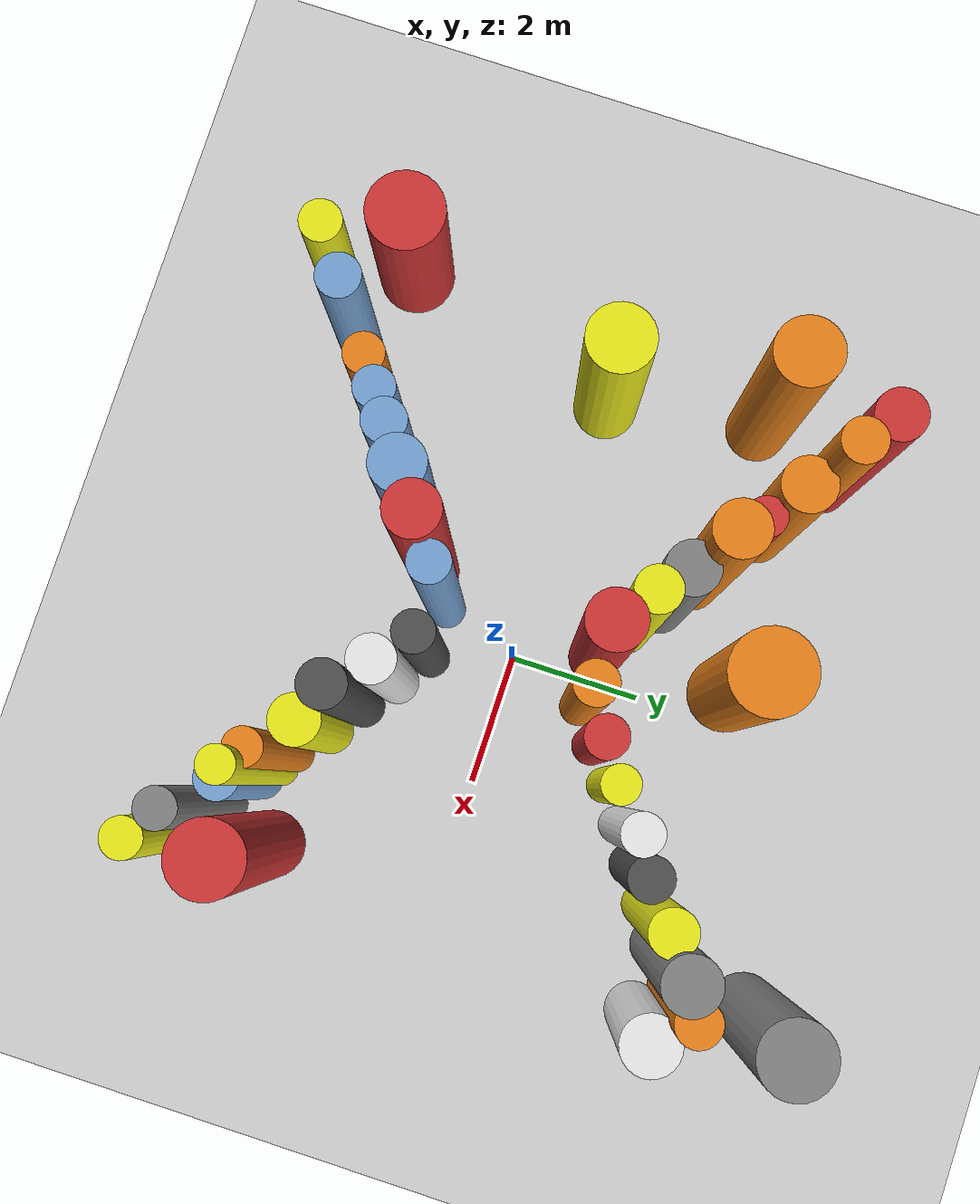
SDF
<?xml version='1.0'?>
<sdf version='1.6'>
  <world name='routeA_rl_v1__dense_recovery__rl_train__bottleneck_corridor__000063'>
    <!-- Sun light -->
    <light name='sun' type='directional'>
      <cast_shadows>1</cast_shadows>
      <pose>0 0 10 0 0 0</pose>
      <diffuse>0.8 0.8 0.8 1</diffuse>
      <specular>0.2 0.2 0.2 1</specular>
      <attenuation>
        <range>1000</range>
        <constant>0.9</constant>
        <linear>0.01</linear>
        <quadratic>0.001</quadratic>
      </attenuation>
      <direction>-0.5 0.1 -0.9</direction>
    </light>

    <!-- Ground plane -->
    <model name='ground_plane'>
      <static>1</static>
      <link name='link'>
        <collision name='collision'>
          <geometry>
            <plane>
              <normal>0 0 1</normal>
              <size>100 100</size>
            </plane>
          </geometry>
          <surface>
            <contact>
              <collide_bitmask>65535</collide_bitmask>
              <ode/>
            </contact>
            <friction>
              <ode>
                <mu>100</mu>
                <mu2>50</mu2>
              </ode>
              <torsional><ode/></torsional>
            </friction>
            <bounce/>
          </surface>
          <max_contacts>10</max_contacts>
        </collision>
        <visual name='visual'>
          <cast_shadows>0</cast_shadows>
          <geometry>
            <plane>
              <normal>0 0 1</normal>
              <size>100 100</size>
            </plane>
          </geometry>
          <material>
            <script>
              <uri>file://media/materials/scripts/gazebo.material</uri>
              <n>Gazebo/Grey</n>
            </script>
          </material>
        </visual>
      </link>
    </model>

    <!-- Environment -->
    <magnetic_field>6e-06 2.3e-05 -4.2e-05</magnetic_field>
    <atmosphere type='adiabatic'/>
    <physics name='default_physics' default='0' type='ode'>
      <gravity>0 0 -9.8</gravity>
      <max_step_size>0.004</max_step_size>
      <real_time_factor>1</real_time_factor>
      <real_time_update_rate>250</real_time_update_rate>
    </physics>
    <scene>
      <ambient>0.4 0.4 0.4 1</ambient>
      <background>0.7 0.7 0.7 1</background>
      <shadows>1</shadows>
    </scene>
    <wind/>
    <spherical_coordinates>
      <surface_model>EARTH_WGS84</surface_model>
      <latitude_deg>0</latitude_deg>
      <longitude_deg>0</longitude_deg>
      <elevation>0</elevation>
      <heading_deg>0</heading_deg>
    </spherical_coordinates>

    <!-- ============ OBSTACLES (40) ============ -->
    <model name='funnel_l_0'>
      <static>1</static>
      <link name='link'>
        <visual name='visual'>
          <geometry>
            <cylinder>
              <radius>0.2784</radius>
              <length>5.7623</length>
            </cylinder>
          </geometry>
          <material>
            <script>
              <n>Gazebo/Yellow</n>
              <uri>file://media/materials/scripts/gazebo.material</uri>
            </script>
            <ambient>0.9 0.9 0.1 1</ambient>
          </material>
        </visual>
        <collision name='collision'>
          <geometry>
            <cylinder>
              <radius>0.2784</radius>
              <length>5.7623</length>
            </cylinder>
          </geometry>
          <max_contacts>10</max_contacts>
          <surface>
            <contact><ode/></contact>
            <bounce/>
            <friction>
              <ode><mu>1</mu><mu2>1</mu2></ode>
              <torsional><ode/></torsional>
            </friction>
          </surface>
        </collision>
      </link>
      <pose>-4.0000 -3.8000 2.8812 0 0 0.0000</pose>
    </model>

    <model name='funnel_r_0'>
      <static>1</static>
      <link name='link'>
        <visual name='visual'>
          <geometry>
            <cylinder>
              <radius>0.3499</radius>
              <length>5.4058</length>
            </cylinder>
          </geometry>
          <material>
            <script>
              <n>Gazebo/Red</n>
              <uri>file://media/materials/scripts/gazebo.material</uri>
            </script>
            <ambient>0.8 0.2 0.2 1</ambient>
          </material>
        </visual>
        <collision name='collision'>
          <geometry>
            <cylinder>
              <radius>0.3499</radius>
              <length>5.4058</length>
            </cylinder>
          </geometry>
          <max_contacts>10</max_contacts>
          <surface>
            <contact><ode/></contact>
            <bounce/>
            <friction>
              <ode><mu>1</mu><mu2>1</mu2></ode>
              <torsional><ode/></torsional>
            </friction>
          </surface>
        </collision>
      </link>
      <pose>-4.0000 3.8000 2.7029 0 0 0.0000</pose>
    </model>

    <model name='funnel_l_1'>
      <static>1</static>
      <link name='link'>
        <visual name='visual'>
          <geometry>
            <cylinder>
              <radius>0.3016</radius>
              <length>5.4706</length>
            </cylinder>
          </geometry>
          <material>
            <script>
              <n>Gazebo/Blue</n>
              <uri>file://media/materials/scripts/gazebo.material</uri>
            </script>
            <ambient>0.447 0.624 0.812 1</ambient>
          </material>
        </visual>
        <collision name='collision'>
          <geometry>
            <cylinder>
              <radius>0.3016</radius>
              <length>5.4706</length>
            </cylinder>
          </geometry>
          <max_contacts>10</max_contacts>
          <surface>
            <contact><ode/></contact>
            <bounce/>
            <friction>
              <ode><mu>1</mu><mu2>1</mu2></ode>
              <torsional><ode/></torsional>
            </friction>
          </surface>
        </collision>
      </link>
      <pose>-3.4857 -3.4286 2.7353 0 0 0.0000</pose>
    </model>

    <model name='funnel_r_1'>
      <static>1</static>
      <link name='link'>
        <visual name='visual'>
          <geometry>
            <cylinder>
              <radius>0.3065</radius>
              <length>5.6435</length>
            </cylinder>
          </geometry>
          <material>
            <script>
              <n>Gazebo/Orange</n>
              <uri>file://media/materials/scripts/gazebo.material</uri>
            </script>
            <ambient>0.9 0.5 0.1 1</ambient>
          </material>
        </visual>
        <collision name='collision'>
          <geometry>
            <cylinder>
              <radius>0.3065</radius>
              <length>5.6435</length>
            </cylinder>
          </geometry>
          <max_contacts>10</max_contacts>
          <surface>
            <contact><ode/></contact>
            <bounce/>
            <friction>
              <ode><mu>1</mu><mu2>1</mu2></ode>
              <torsional><ode/></torsional>
            </friction>
          </surface>
        </collision>
      </link>
      <pose>-3.4857 3.4286 2.8217 0 0 0.0000</pose>
    </model>

    <model name='funnel_l_2'>
      <static>1</static>
      <link name='link'>
        <visual name='visual'>
          <geometry>
            <cylinder>
              <radius>0.2942</radius>
              <length>4.0134</length>
            </cylinder>
          </geometry>
          <material>
            <script>
              <n>Gazebo/Orange</n>
              <uri>file://media/materials/scripts/gazebo.material</uri>
            </script>
            <ambient>0.9 0.5 0.1 1</ambient>
          </material>
        </visual>
        <collision name='collision'>
          <geometry>
            <cylinder>
              <radius>0.2942</radius>
              <length>4.0134</length>
            </cylinder>
          </geometry>
          <max_contacts>10</max_contacts>
          <surface>
            <contact><ode/></contact>
            <bounce/>
            <friction>
              <ode><mu>1</mu><mu2>1</mu2></ode>
              <torsional><ode/></torsional>
            </friction>
          </surface>
        </collision>
      </link>
      <pose>-2.9714 -3.0571 2.0067 0 0 0.0000</pose>
    </model>

    <model name='funnel_r_2'>
      <static>1</static>
      <link name='link'>
        <visual name='visual'>
          <geometry>
            <cylinder>
              <radius>0.3831</radius>
              <length>4.6756</length>
            </cylinder>
          </geometry>
          <material>
            <script>
              <n>Gazebo/Orange</n>
              <uri>file://media/materials/scripts/gazebo.material</uri>
            </script>
            <ambient>0.9 0.5 0.1 1</ambient>
          </material>
        </visual>
        <collision name='collision'>
          <geometry>
            <cylinder>
              <radius>0.3831</radius>
              <length>4.6756</length>
            </cylinder>
          </geometry>
          <max_contacts>10</max_contacts>
          <surface>
            <contact><ode/></contact>
            <bounce/>
            <friction>
              <ode><mu>1</mu><mu2>1</mu2></ode>
              <torsional><ode/></torsional>
            </friction>
          </surface>
        </collision>
      </link>
      <pose>-2.9714 3.0571 2.3378 0 0 0.0000</pose>
    </model>

    <model name='funnel_l_3'>
      <static>1</static>
      <link name='link'>
        <visual name='visual'>
          <geometry>
            <cylinder>
              <radius>0.2924</radius>
              <length>4.6048</length>
            </cylinder>
          </geometry>
          <material>
            <script>
              <n>Gazebo/Blue</n>
              <uri>file://media/materials/scripts/gazebo.material</uri>
            </script>
            <ambient>0.447 0.624 0.812 1</ambient>
          </material>
        </visual>
        <collision name='collision'>
          <geometry>
            <cylinder>
              <radius>0.2924</radius>
              <length>4.6048</length>
            </cylinder>
          </geometry>
          <max_contacts>10</max_contacts>
          <surface>
            <contact><ode/></contact>
            <bounce/>
            <friction>
              <ode><mu>1</mu><mu2>1</mu2></ode>
              <torsional><ode/></torsional>
            </friction>
          </surface>
        </collision>
      </link>
      <pose>-2.4571 -2.6857 2.3024 0 0 0.0000</pose>
    </model>

    <model name='funnel_r_3'>
      <static>1</static>
      <link name='link'>
        <visual name='visual'>
          <geometry>
            <cylinder>
              <radius>0.2808</radius>
              <length>4.3903</length>
            </cylinder>
          </geometry>
          <material>
            <script>
              <n>Gazebo/Red</n>
              <uri>file://media/materials/scripts/gazebo.material</uri>
            </script>
            <ambient>0.8 0.2 0.2 1</ambient>
          </material>
        </visual>
        <collision name='collision'>
          <geometry>
            <cylinder>
              <radius>0.2808</radius>
              <length>4.3903</length>
            </cylinder>
          </geometry>
          <max_contacts>10</max_contacts>
          <surface>
            <contact><ode/></contact>
            <bounce/>
            <friction>
              <ode><mu>1</mu><mu2>1</mu2></ode>
              <torsional><ode/></torsional>
            </friction>
          </surface>
        </collision>
      </link>
      <pose>-2.4571 2.6857 2.1952 0 0 0.0000</pose>
    </model>

    <model name='funnel_l_4'>
      <static>1</static>
      <link name='link'>
        <visual name='visual'>
          <geometry>
            <cylinder>
              <radius>0.3021</radius>
              <length>5.3583</length>
            </cylinder>
          </geometry>
          <material>
            <script>
              <n>Gazebo/Blue</n>
              <uri>file://media/materials/scripts/gazebo.material</uri>
            </script>
            <ambient>0.447 0.624 0.812 1</ambient>
          </material>
        </visual>
        <collision name='collision'>
          <geometry>
            <cylinder>
              <radius>0.3021</radius>
              <length>5.3583</length>
            </cylinder>
          </geometry>
          <max_contacts>10</max_contacts>
          <surface>
            <contact><ode/></contact>
            <bounce/>
            <friction>
              <ode><mu>1</mu><mu2>1</mu2></ode>
              <torsional><ode/></torsional>
            </friction>
          </surface>
        </collision>
      </link>
      <pose>-1.9429 -2.3143 2.6791 0 0 0.0000</pose>
    </model>

    <model name='funnel_r_4'>
      <static>1</static>
      <link name='link'>
        <visual name='visual'>
          <geometry>
            <cylinder>
              <radius>0.3800</radius>
              <length>5.7894</length>
            </cylinder>
          </geometry>
          <material>
            <script>
              <n>Gazebo/Orange</n>
              <uri>file://media/materials/scripts/gazebo.material</uri>
            </script>
            <ambient>0.9 0.5 0.1 1</ambient>
          </material>
        </visual>
        <collision name='collision'>
          <geometry>
            <cylinder>
              <radius>0.3800</radius>
              <length>5.7894</length>
            </cylinder>
          </geometry>
          <max_contacts>10</max_contacts>
          <surface>
            <contact><ode/></contact>
            <bounce/>
            <friction>
              <ode><mu>1</mu><mu2>1</mu2></ode>
              <torsional><ode/></torsional>
            </friction>
          </surface>
        </collision>
      </link>
      <pose>-1.9429 2.3143 2.8947 0 0 0.0000</pose>
    </model>

    <model name='funnel_l_5'>
      <static>1</static>
      <link name='link'>
        <visual name='visual'>
          <geometry>
            <cylinder>
              <radius>0.3782</radius>
              <length>5.6881</length>
            </cylinder>
          </geometry>
          <material>
            <script>
              <n>Gazebo/Blue</n>
              <uri>file://media/materials/scripts/gazebo.material</uri>
            </script>
            <ambient>0.447 0.624 0.812 1</ambient>
          </material>
        </visual>
        <collision name='collision'>
          <geometry>
            <cylinder>
              <radius>0.3782</radius>
              <length>5.6881</length>
            </cylinder>
          </geometry>
          <max_contacts>10</max_contacts>
          <surface>
            <contact><ode/></contact>
            <bounce/>
            <friction>
              <ode><mu>1</mu><mu2>1</mu2></ode>
              <torsional><ode/></torsional>
            </friction>
          </surface>
        </collision>
      </link>
      <pose>-1.4286 -1.9429 2.8440 0 0 0.0000</pose>
    </model>

    <model name='funnel_r_5'>
      <static>1</static>
      <link name='link'>
        <visual name='visual'>
          <geometry>
            <cylinder>
              <radius>0.3706</radius>
              <length>4.9721</length>
            </cylinder>
          </geometry>
          <material>
            <script>
              <n>Gazebo/Grey</n>
              <uri>file://media/materials/scripts/gazebo.material</uri>
            </script>
            <ambient>0.5 0.5 0.5 1</ambient>
          </material>
        </visual>
        <collision name='collision'>
          <geometry>
            <cylinder>
              <radius>0.3706</radius>
              <length>4.9721</length>
            </cylinder>
          </geometry>
          <max_contacts>10</max_contacts>
          <surface>
            <contact><ode/></contact>
            <bounce/>
            <friction>
              <ode><mu>1</mu><mu2>1</mu2></ode>
              <torsional><ode/></torsional>
            </friction>
          </surface>
        </collision>
      </link>
      <pose>-1.4286 1.9429 2.4861 0 0 0.0000</pose>
    </model>

    <model name='funnel_l_6'>
      <static>1</static>
      <link name='link'>
        <visual name='visual'>
          <geometry>
            <cylinder>
              <radius>0.3805</radius>
              <length>5.8896</length>
            </cylinder>
          </geometry>
          <material>
            <script>
              <n>Gazebo/Red</n>
              <uri>file://media/materials/scripts/gazebo.material</uri>
            </script>
            <ambient>0.8 0.2 0.2 1</ambient>
          </material>
        </visual>
        <collision name='collision'>
          <geometry>
            <cylinder>
              <radius>0.3805</radius>
              <length>5.8896</length>
            </cylinder>
          </geometry>
          <max_contacts>10</max_contacts>
          <surface>
            <contact><ode/></contact>
            <bounce/>
            <friction>
              <ode><mu>1</mu><mu2>1</mu2></ode>
              <torsional><ode/></torsional>
            </friction>
          </surface>
        </collision>
      </link>
      <pose>-0.9143 -1.5714 2.9448 0 0 0.0000</pose>
    </model>

    <model name='funnel_r_6'>
      <static>1</static>
      <link name='link'>
        <visual name='visual'>
          <geometry>
            <cylinder>
              <radius>0.3105</radius>
              <length>5.8539</length>
            </cylinder>
          </geometry>
          <material>
            <script>
              <n>Gazebo/Yellow</n>
              <uri>file://media/materials/scripts/gazebo.material</uri>
            </script>
            <ambient>0.9 0.9 0.1 1</ambient>
          </material>
        </visual>
        <collision name='collision'>
          <geometry>
            <cylinder>
              <radius>0.3105</radius>
              <length>5.8539</length>
            </cylinder>
          </geometry>
          <max_contacts>10</max_contacts>
          <surface>
            <contact><ode/></contact>
            <bounce/>
            <friction>
              <ode><mu>1</mu><mu2>1</mu2></ode>
              <torsional><ode/></torsional>
            </friction>
          </surface>
        </collision>
      </link>
      <pose>-0.9143 1.5714 2.9270 0 0 0.0000</pose>
    </model>

    <model name='funnel_l_7'>
      <static>1</static>
      <link name='link'>
        <visual name='visual'>
          <geometry>
            <cylinder>
              <radius>0.2876</radius>
              <length>5.5774</length>
            </cylinder>
          </geometry>
          <material>
            <script>
              <n>Gazebo/Blue</n>
              <uri>file://media/materials/scripts/gazebo.material</uri>
            </script>
            <ambient>0.447 0.624 0.812 1</ambient>
          </material>
        </visual>
        <collision name='collision'>
          <geometry>
            <cylinder>
              <radius>0.2876</radius>
              <length>5.5774</length>
            </cylinder>
          </geometry>
          <max_contacts>10</max_contacts>
          <surface>
            <contact><ode/></contact>
            <bounce/>
            <friction>
              <ode><mu>1</mu><mu2>1</mu2></ode>
              <torsional><ode/></torsional>
            </friction>
          </surface>
        </collision>
      </link>
      <pose>-0.4000 -1.2000 2.7887 0 0 0.0000</pose>
    </model>

    <model name='funnel_r_7'>
      <static>1</static>
      <link name='link'>
        <visual name='visual'>
          <geometry>
            <cylinder>
              <radius>0.3985</radius>
              <length>5.8853</length>
            </cylinder>
          </geometry>
          <material>
            <script>
              <n>Gazebo/Red</n>
              <uri>file://media/materials/scripts/gazebo.material</uri>
            </script>
            <ambient>0.8 0.2 0.2 1</ambient>
          </material>
        </visual>
        <collision name='collision'>
          <geometry>
            <cylinder>
              <radius>0.3985</radius>
              <length>5.8853</length>
            </cylinder>
          </geometry>
          <max_contacts>10</max_contacts>
          <surface>
            <contact><ode/></contact>
            <bounce/>
            <friction>
              <ode><mu>1</mu><mu2>1</mu2></ode>
              <torsional><ode/></torsional>
            </friction>
          </surface>
        </collision>
      </link>
      <pose>-0.4000 1.2000 2.9427 0 0 0.0000</pose>
    </model>

    <model name='funnel_out_l_0'>
      <static>1</static>
      <link name='link'>
        <visual name='visual'>
          <geometry>
            <cylinder>
              <radius>0.2959</radius>
              <length>4.5158</length>
            </cylinder>
          </geometry>
          <material>
            <script>
              <n>Gazebo/DarkGrey</n>
              <uri>file://media/materials/scripts/gazebo.material</uri>
            </script>
            <ambient>0.3 0.3 0.3 1</ambient>
          </material>
        </visual>
        <collision name='collision'>
          <geometry>
            <cylinder>
              <radius>0.2959</radius>
              <length>4.5158</length>
            </cylinder>
          </geometry>
          <max_contacts>10</max_contacts>
          <surface>
            <contact><ode/></contact>
            <bounce/>
            <friction>
              <ode><mu>1</mu><mu2>1</mu2></ode>
              <torsional><ode/></torsional>
            </friction>
          </surface>
        </collision>
      </link>
      <pose>0.4000 -1.2000 2.2579 0 0 0.0000</pose>
    </model>

    <model name='funnel_out_r_0'>
      <static>1</static>
      <link name='link'>
        <visual name='visual'>
          <geometry>
            <cylinder>
              <radius>0.2940</radius>
              <length>5.9018</length>
            </cylinder>
          </geometry>
          <material>
            <script>
              <n>Gazebo/Orange</n>
              <uri>file://media/materials/scripts/gazebo.material</uri>
            </script>
            <ambient>0.9 0.5 0.1 1</ambient>
          </material>
        </visual>
        <collision name='collision'>
          <geometry>
            <cylinder>
              <radius>0.2940</radius>
              <length>5.9018</length>
            </cylinder>
          </geometry>
          <max_contacts>10</max_contacts>
          <surface>
            <contact><ode/></contact>
            <bounce/>
            <friction>
              <ode><mu>1</mu><mu2>1</mu2></ode>
              <torsional><ode/></torsional>
            </friction>
          </surface>
        </collision>
      </link>
      <pose>0.4000 1.2000 2.9509 0 0 0.0000</pose>
    </model>

    <model name='funnel_out_l_1'>
      <static>1</static>
      <link name='link'>
        <visual name='visual'>
          <geometry>
            <cylinder>
              <radius>0.3319</radius>
              <length>4.8275</length>
            </cylinder>
          </geometry>
          <material>
            <script>
              <n>Gazebo/White</n>
              <uri>file://media/materials/scripts/gazebo.material</uri>
            </script>
            <ambient>0.9 0.9 0.9 1</ambient>
          </material>
        </visual>
        <collision name='collision'>
          <geometry>
            <cylinder>
              <radius>0.3319</radius>
              <length>4.8275</length>
            </cylinder>
          </geometry>
          <max_contacts>10</max_contacts>
          <surface>
            <contact><ode/></contact>
            <bounce/>
            <friction>
              <ode><mu>1</mu><mu2>1</mu2></ode>
              <torsional><ode/></torsional>
            </friction>
          </surface>
        </collision>
      </link>
      <pose>0.9143 -1.5714 2.4137 0 0 0.0000</pose>
    </model>

    <model name='funnel_out_r_1'>
      <static>1</static>
      <link name='link'>
        <visual name='visual'>
          <geometry>
            <cylinder>
              <radius>0.3010</radius>
              <length>4.6216</length>
            </cylinder>
          </geometry>
          <material>
            <script>
              <n>Gazebo/Red</n>
              <uri>file://media/materials/scripts/gazebo.material</uri>
            </script>
            <ambient>0.8 0.2 0.2 1</ambient>
          </material>
        </visual>
        <collision name='collision'>
          <geometry>
            <cylinder>
              <radius>0.3010</radius>
              <length>4.6216</length>
            </cylinder>
          </geometry>
          <max_contacts>10</max_contacts>
          <surface>
            <contact><ode/></contact>
            <bounce/>
            <friction>
              <ode><mu>1</mu><mu2>1</mu2></ode>
              <torsional><ode/></torsional>
            </friction>
          </surface>
        </collision>
      </link>
      <pose>0.9143 1.5714 2.3108 0 0 0.0000</pose>
    </model>

    <model name='funnel_out_l_2'>
      <static>1</static>
      <link name='link'>
        <visual name='visual'>
          <geometry>
            <cylinder>
              <radius>0.3216</radius>
              <length>5.7468</length>
            </cylinder>
          </geometry>
          <material>
            <script>
              <n>Gazebo/DarkGrey</n>
              <uri>file://media/materials/scripts/gazebo.material</uri>
            </script>
            <ambient>0.3 0.3 0.3 1</ambient>
          </material>
        </visual>
        <collision name='collision'>
          <geometry>
            <cylinder>
              <radius>0.3216</radius>
              <length>5.7468</length>
            </cylinder>
          </geometry>
          <max_contacts>10</max_contacts>
          <surface>
            <contact><ode/></contact>
            <bounce/>
            <friction>
              <ode><mu>1</mu><mu2>1</mu2></ode>
              <torsional><ode/></torsional>
            </friction>
          </surface>
        </collision>
      </link>
      <pose>1.4286 -1.9429 2.8734 0 0 0.0000</pose>
    </model>

    <model name='funnel_out_r_2'>
      <static>1</static>
      <link name='link'>
        <visual name='visual'>
          <geometry>
            <cylinder>
              <radius>0.2726</radius>
              <length>4.2961</length>
            </cylinder>
          </geometry>
          <material>
            <script>
              <n>Gazebo/Yellow</n>
              <uri>file://media/materials/scripts/gazebo.material</uri>
            </script>
            <ambient>0.9 0.9 0.1 1</ambient>
          </material>
        </visual>
        <collision name='collision'>
          <geometry>
            <cylinder>
              <radius>0.2726</radius>
              <length>4.2961</length>
            </cylinder>
          </geometry>
          <max_contacts>10</max_contacts>
          <surface>
            <contact><ode/></contact>
            <bounce/>
            <friction>
              <ode><mu>1</mu><mu2>1</mu2></ode>
              <torsional><ode/></torsional>
            </friction>
          </surface>
        </collision>
      </link>
      <pose>1.4286 1.9429 2.1480 0 0 0.0000</pose>
    </model>

    <model name='funnel_out_l_3'>
      <static>1</static>
      <link name='link'>
        <visual name='visual'>
          <geometry>
            <cylinder>
              <radius>0.3551</radius>
              <length>4.3196</length>
            </cylinder>
          </geometry>
          <material>
            <script>
              <n>Gazebo/Yellow</n>
              <uri>file://media/materials/scripts/gazebo.material</uri>
            </script>
            <ambient>0.9 0.9 0.1 1</ambient>
          </material>
        </visual>
        <collision name='collision'>
          <geometry>
            <cylinder>
              <radius>0.3551</radius>
              <length>4.3196</length>
            </cylinder>
          </geometry>
          <max_contacts>10</max_contacts>
          <surface>
            <contact><ode/></contact>
            <bounce/>
            <friction>
              <ode><mu>1</mu><mu2>1</mu2></ode>
              <torsional><ode/></torsional>
            </friction>
          </surface>
        </collision>
      </link>
      <pose>1.9429 -2.3143 2.1598 0 0 0.0000</pose>
    </model>

    <model name='funnel_out_r_3'>
      <static>1</static>
      <link name='link'>
        <visual name='visual'>
          <geometry>
            <cylinder>
              <radius>0.2841</radius>
              <length>5.4385</length>
            </cylinder>
          </geometry>
          <material>
            <script>
              <n>Gazebo/White</n>
              <uri>file://media/materials/scripts/gazebo.material</uri>
            </script>
            <ambient>0.9 0.9 0.9 1</ambient>
          </material>
        </visual>
        <collision name='collision'>
          <geometry>
            <cylinder>
              <radius>0.2841</radius>
              <length>5.4385</length>
            </cylinder>
          </geometry>
          <max_contacts>10</max_contacts>
          <surface>
            <contact><ode/></contact>
            <bounce/>
            <friction>
              <ode><mu>1</mu><mu2>1</mu2></ode>
              <torsional><ode/></torsional>
            </friction>
          </surface>
        </collision>
      </link>
      <pose>1.9429 2.3143 2.7192 0 0 0.0000</pose>
    </model>

    <model name='funnel_out_l_4'>
      <static>1</static>
      <link name='link'>
        <visual name='visual'>
          <geometry>
            <cylinder>
              <radius>0.2636</radius>
              <length>5.2330</length>
            </cylinder>
          </geometry>
          <material>
            <script>
              <n>Gazebo/Orange</n>
              <uri>file://media/materials/scripts/gazebo.material</uri>
            </script>
            <ambient>0.9 0.5 0.1 1</ambient>
          </material>
        </visual>
        <collision name='collision'>
          <geometry>
            <cylinder>
              <radius>0.2636</radius>
              <length>5.2330</length>
            </cylinder>
          </geometry>
          <max_contacts>10</max_contacts>
          <surface>
            <contact><ode/></contact>
            <bounce/>
            <friction>
              <ode><mu>1</mu><mu2>1</mu2></ode>
              <torsional><ode/></torsional>
            </friction>
          </surface>
        </collision>
      </link>
      <pose>2.4571 -2.6857 2.6165 0 0 0.0000</pose>
    </model>

    <model name='funnel_out_r_4'>
      <static>1</static>
      <link name='link'>
        <visual name='visual'>
          <geometry>
            <cylinder>
              <radius>0.3167</radius>
              <length>4.2395</length>
            </cylinder>
          </geometry>
          <material>
            <script>
              <n>Gazebo/DarkGrey</n>
              <uri>file://media/materials/scripts/gazebo.material</uri>
            </script>
            <ambient>0.3 0.3 0.3 1</ambient>
          </material>
        </visual>
        <collision name='collision'>
          <geometry>
            <cylinder>
              <radius>0.3167</radius>
              <length>4.2395</length>
            </cylinder>
          </geometry>
          <max_contacts>10</max_contacts>
          <surface>
            <contact><ode/></contact>
            <bounce/>
            <friction>
              <ode><mu>1</mu><mu2>1</mu2></ode>
              <torsional><ode/></torsional>
            </friction>
          </surface>
        </collision>
      </link>
      <pose>2.4571 2.6857 2.1198 0 0 0.0000</pose>
    </model>

    <model name='funnel_out_l_5'>
      <static>1</static>
      <link name='link'>
        <visual name='visual'>
          <geometry>
            <cylinder>
              <radius>0.3040</radius>
              <length>4.1319</length>
            </cylinder>
          </geometry>
          <material>
            <script>
              <n>Gazebo/Blue</n>
              <uri>file://media/materials/scripts/gazebo.material</uri>
            </script>
            <ambient>0.447 0.624 0.812 1</ambient>
          </material>
        </visual>
        <collision name='collision'>
          <geometry>
            <cylinder>
              <radius>0.3040</radius>
              <length>4.1319</length>
            </cylinder>
          </geometry>
          <max_contacts>10</max_contacts>
          <surface>
            <contact><ode/></contact>
            <bounce/>
            <friction>
              <ode><mu>1</mu><mu2>1</mu2></ode>
              <torsional><ode/></torsional>
            </friction>
          </surface>
        </collision>
      </link>
      <pose>2.9714 -3.0571 2.0659 0 0 0.0000</pose>
    </model>

    <model name='funnel_out_r_5'>
      <static>1</static>
      <link name='link'>
        <visual name='visual'>
          <geometry>
            <cylinder>
              <radius>0.3252</radius>
              <length>5.1532</length>
            </cylinder>
          </geometry>
          <material>
            <script>
              <n>Gazebo/Yellow</n>
              <uri>file://media/materials/scripts/gazebo.material</uri>
            </script>
            <ambient>0.9 0.9 0.1 1</ambient>
          </material>
        </visual>
        <collision name='collision'>
          <geometry>
            <cylinder>
              <radius>0.3252</radius>
              <length>5.1532</length>
            </cylinder>
          </geometry>
          <max_contacts>10</max_contacts>
          <surface>
            <contact><ode/></contact>
            <bounce/>
            <friction>
              <ode><mu>1</mu><mu2>1</mu2></ode>
              <torsional><ode/></torsional>
            </friction>
          </surface>
        </collision>
      </link>
      <pose>2.9714 3.0571 2.5766 0 0 0.0000</pose>
    </model>

    <model name='funnel_out_l_6'>
      <static>1</static>
      <link name='link'>
        <visual name='visual'>
          <geometry>
            <cylinder>
              <radius>0.2800</radius>
              <length>5.3799</length>
            </cylinder>
          </geometry>
          <material>
            <script>
              <n>Gazebo/Grey</n>
              <uri>file://media/materials/scripts/gazebo.material</uri>
            </script>
            <ambient>0.5 0.5 0.5 1</ambient>
          </material>
        </visual>
        <collision name='collision'>
          <geometry>
            <cylinder>
              <radius>0.2800</radius>
              <length>5.3799</length>
            </cylinder>
          </geometry>
          <max_contacts>10</max_contacts>
          <surface>
            <contact><ode/></contact>
            <bounce/>
            <friction>
              <ode><mu>1</mu><mu2>1</mu2></ode>
              <torsional><ode/></torsional>
            </friction>
          </surface>
        </collision>
      </link>
      <pose>3.4857 -3.4286 2.6899 0 0 0.0000</pose>
    </model>

    <model name='funnel_out_r_6'>
      <static>1</static>
      <link name='link'>
        <visual name='visual'>
          <geometry>
            <cylinder>
              <radius>0.3931</radius>
              <length>5.3952</length>
            </cylinder>
          </geometry>
          <material>
            <script>
              <n>Gazebo/Grey</n>
              <uri>file://media/materials/scripts/gazebo.material</uri>
            </script>
            <ambient>0.5 0.5 0.5 1</ambient>
          </material>
        </visual>
        <collision name='collision'>
          <geometry>
            <cylinder>
              <radius>0.3931</radius>
              <length>5.3952</length>
            </cylinder>
          </geometry>
          <max_contacts>10</max_contacts>
          <surface>
            <contact><ode/></contact>
            <bounce/>
            <friction>
              <ode><mu>1</mu><mu2>1</mu2></ode>
              <torsional><ode/></torsional>
            </friction>
          </surface>
        </collision>
      </link>
      <pose>3.4857 3.4286 2.6976 0 0 0.0000</pose>
    </model>

    <model name='funnel_out_l_7'>
      <static>1</static>
      <link name='link'>
        <visual name='visual'>
          <geometry>
            <cylinder>
              <radius>0.2821</radius>
              <length>4.9270</length>
            </cylinder>
          </geometry>
          <material>
            <script>
              <n>Gazebo/Yellow</n>
              <uri>file://media/materials/scripts/gazebo.material</uri>
            </script>
            <ambient>0.9 0.9 0.1 1</ambient>
          </material>
        </visual>
        <collision name='collision'>
          <geometry>
            <cylinder>
              <radius>0.2821</radius>
              <length>4.9270</length>
            </cylinder>
          </geometry>
          <max_contacts>10</max_contacts>
          <surface>
            <contact><ode/></contact>
            <bounce/>
            <friction>
              <ode><mu>1</mu><mu2>1</mu2></ode>
              <torsional><ode/></torsional>
            </friction>
          </surface>
        </collision>
      </link>
      <pose>4.0000 -3.8000 2.4635 0 0 0.0000</pose>
    </model>

    <model name='funnel_out_r_7'>
      <static>1</static>
      <link name='link'>
        <visual name='visual'>
          <geometry>
            <cylinder>
              <radius>0.3245</radius>
              <length>4.3132</length>
            </cylinder>
          </geometry>
          <material>
            <script>
              <n>Gazebo/Orange</n>
              <uri>file://media/materials/scripts/gazebo.material</uri>
            </script>
            <ambient>0.9 0.5 0.1 1</ambient>
          </material>
        </visual>
        <collision name='collision'>
          <geometry>
            <cylinder>
              <radius>0.3245</radius>
              <length>4.3132</length>
            </cylinder>
          </geometry>
          <max_contacts>10</max_contacts>
          <surface>
            <contact><ode/></contact>
            <bounce/>
            <friction>
              <ode><mu>1</mu><mu2>1</mu2></ode>
              <torsional><ode/></torsional>
            </friction>
          </surface>
        </collision>
      </link>
      <pose>4.0000 3.8000 2.1566 0 0 0.0000</pose>
    </model>

    <model name='bn_scatter_0'>
      <static>1</static>
      <link name='link'>
        <visual name='visual'>
          <geometry>
            <cylinder>
              <radius>0.4813</radius>
              <length>4.8332</length>
            </cylinder>
          </geometry>
          <material>
            <script>
              <n>Gazebo/Orange</n>
              <uri>file://media/materials/scripts/gazebo.material</uri>
            </script>
            <ambient>0.9 0.5 0.1 1</ambient>
          </material>
        </visual>
        <collision name='collision'>
          <geometry>
            <cylinder>
              <radius>0.4813</radius>
              <length>4.8332</length>
            </cylinder>
          </geometry>
          <max_contacts>10</max_contacts>
          <surface>
            <contact><ode/></contact>
            <bounce/>
            <friction>
              <ode><mu>1</mu><mu2>1</mu2></ode>
              <torsional><ode/></torsional>
            </friction>
          </surface>
        </collision>
      </link>
      <pose>-4.5889 2.5235 2.4166 0 0 0.0000</pose>
    </model>

    <model name='bn_scatter_1'>
      <static>1</static>
      <link name='link'>
        <visual name='visual'>
          <geometry>
            <cylinder>
              <radius>0.5168</radius>
              <length>5.5835</length>
            </cylinder>
          </geometry>
          <material>
            <script>
              <n>Gazebo/Red</n>
              <uri>file://media/materials/scripts/gazebo.material</uri>
            </script>
            <ambient>0.8 0.2 0.2 1</ambient>
          </material>
        </visual>
        <collision name='collision'>
          <geometry>
            <cylinder>
              <radius>0.5168</radius>
              <length>5.5835</length>
            </cylinder>
          </geometry>
          <max_contacts>10</max_contacts>
          <surface>
            <contact><ode/></contact>
            <bounce/>
            <friction>
              <ode><mu>1</mu><mu2>1</mu2></ode>
              <torsional><ode/></torsional>
            </friction>
          </surface>
        </collision>
      </link>
      <pose>3.8641 -2.6181 2.7917 0 0 0.0000</pose>
    </model>

    <model name='bn_scatter_2'>
      <static>1</static>
      <link name='link'>
        <visual name='visual'>
          <geometry>
            <cylinder>
              <radius>0.2519</radius>
              <length>5.7735</length>
            </cylinder>
          </geometry>
          <material>
            <script>
              <n>Gazebo/Yellow</n>
              <uri>file://media/materials/scripts/gazebo.material</uri>
            </script>
            <ambient>0.9 0.9 0.1 1</ambient>
          </material>
        </visual>
        <collision name='collision'>
          <geometry>
            <cylinder>
              <radius>0.2519</radius>
              <length>5.7735</length>
            </cylinder>
          </geometry>
          <max_contacts>10</max_contacts>
          <surface>
            <contact><ode/></contact>
            <bounce/>
            <friction>
              <ode><mu>1</mu><mu2>1</mu2></ode>
              <torsional><ode/></torsional>
            </friction>
          </surface>
        </collision>
      </link>
      <pose>2.7370 -2.8364 2.8867 0 0 0.0000</pose>
    </model>

    <model name='bn_scatter_3'>
      <static>1</static>
      <link name='link'>
        <visual name='visual'>
          <geometry>
            <cylinder>
              <radius>0.4952</radius>
              <length>4.1290</length>
            </cylinder>
          </geometry>
          <material>
            <script>
              <n>Gazebo/Yellow</n>
              <uri>file://media/materials/scripts/gazebo.material</uri>
            </script>
            <ambient>0.9 0.9 0.1 1</ambient>
          </material>
        </visual>
        <collision name='collision'>
          <geometry>
            <cylinder>
              <radius>0.4952</radius>
              <length>4.1290</length>
            </cylinder>
          </geometry>
          <max_contacts>10</max_contacts>
          <surface>
            <contact><ode/></contact>
            <bounce/>
            <friction>
              <ode><mu>1</mu><mu2>1</mu2></ode>
              <torsional><ode/></torsional>
            </friction>
          </surface>
        </collision>
      </link>
      <pose>-4.2028 0.1541 2.0645 0 0 0.0000</pose>
    </model>

    <model name='bn_scatter_4'>
      <static>1</static>
      <link name='link'>
        <visual name='visual'>
          <geometry>
            <cylinder>
              <radius>0.4307</radius>
              <length>3.6055</length>
            </cylinder>
          </geometry>
          <material>
            <script>
              <n>Gazebo/White</n>
              <uri>file://media/materials/scripts/gazebo.material</uri>
            </script>
            <ambient>0.9 0.9 0.9 1</ambient>
          </material>
        </visual>
        <collision name='collision'>
          <geometry>
            <cylinder>
              <radius>0.4307</radius>
              <length>3.6055</length>
            </cylinder>
          </geometry>
          <max_contacts>10</max_contacts>
          <surface>
            <contact><ode/></contact>
            <bounce/>
            <friction>
              <ode><mu>1</mu><mu2>1</mu2></ode>
              <torsional><ode/></torsional>
            </friction>
          </surface>
        </collision>
      </link>
      <pose>4.5246 3.3900 1.8027 0 0 0.0000</pose>
    </model>

    <model name='bn_scatter_5'>
      <static>1</static>
      <link name='link'>
        <visual name='visual'>
          <geometry>
            <cylinder>
              <radius>0.5229</radius>
              <length>4.9786</length>
            </cylinder>
          </geometry>
          <material>
            <script>
              <n>Gazebo/Grey</n>
              <uri>file://media/materials/scripts/gazebo.material</uri>
            </script>
            <ambient>0.5 0.5 0.5 1</ambient>
          </material>
        </visual>
        <collision name='collision'>
          <geometry>
            <cylinder>
              <radius>0.5229</radius>
              <length>4.9786</length>
            </cylinder>
          </geometry>
          <max_contacts>10</max_contacts>
          <surface>
            <contact><ode/></contact>
            <bounce/>
            <friction>
              <ode><mu>1</mu><mu2>1</mu2></ode>
              <torsional><ode/></torsional>
            </friction>
          </surface>
        </collision>
      </link>
      <pose>3.9667 4.9780 2.4893 0 0 0.0000</pose>
    </model>

    <model name='bn_scatter_6'>
      <static>1</static>
      <link name='link'>
        <visual name='visual'>
          <geometry>
            <cylinder>
              <radius>0.5922</radius>
              <length>4.9371</length>
            </cylinder>
          </geometry>
          <material>
            <script>
              <n>Gazebo/Orange</n>
              <uri>file://media/materials/scripts/gazebo.material</uri>
            </script>
            <ambient>0.9 0.5 0.1 1</ambient>
          </material>
        </visual>
        <collision name='collision'>
          <geometry>
            <cylinder>
              <radius>0.5922</radius>
              <length>4.9371</length>
            </cylinder>
          </geometry>
          <max_contacts>10</max_contacts>
          <surface>
            <contact><ode/></contact>
            <bounce/>
            <friction>
              <ode><mu>1</mu><mu2>1</mu2></ode>
              <torsional><ode/></torsional>
            </friction>
          </surface>
        </collision>
      </link>
      <pose>-0.4887 3.2942 2.4685 0 0 0.0000</pose>
    </model>

    <model name='bn_scatter_7'>
      <static>1</static>
      <link name='link'>
        <visual name='visual'>
          <geometry>
            <cylinder>
              <radius>0.5850</radius>
              <length>3.0781</length>
            </cylinder>
          </geometry>
          <material>
            <script>
              <n>Gazebo/Red</n>
              <uri>file://media/materials/scripts/gazebo.material</uri>
            </script>
            <ambient>0.8 0.2 0.2 1</ambient>
          </material>
        </visual>
        <collision name='collision'>
          <geometry>
            <cylinder>
              <radius>0.5850</radius>
              <length>3.0781</length>
            </cylinder>
          </geometry>
          <max_contacts>10</max_contacts>
          <surface>
            <contact><ode/></contact>
            <bounce/>
            <friction>
              <ode><mu>1</mu><mu2>1</mu2></ode>
              <torsional><ode/></torsional>
            </friction>
          </surface>
        </collision>
      </link>
      <pose>-5.2971 -3.3126 1.5391 0 0 0.0000</pose>
    </model>

    <!-- GUI camera -->
    <gui fullscreen='0'>
      <camera name='user_camera'>
        <pose>-15 0 18 0 0.85 0.15</pose>
        <view_controller>orbit</view_controller>
        <projection_type>perspective</projection_type>
      </camera>
    </gui>
  </world>
</sdf>
